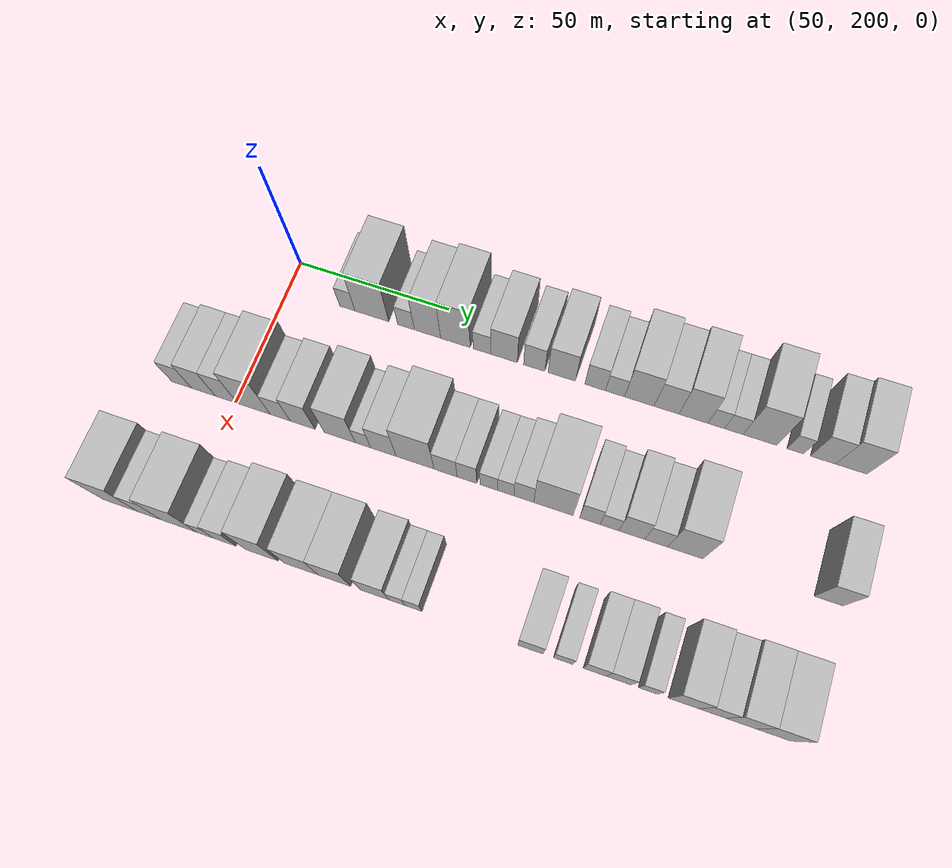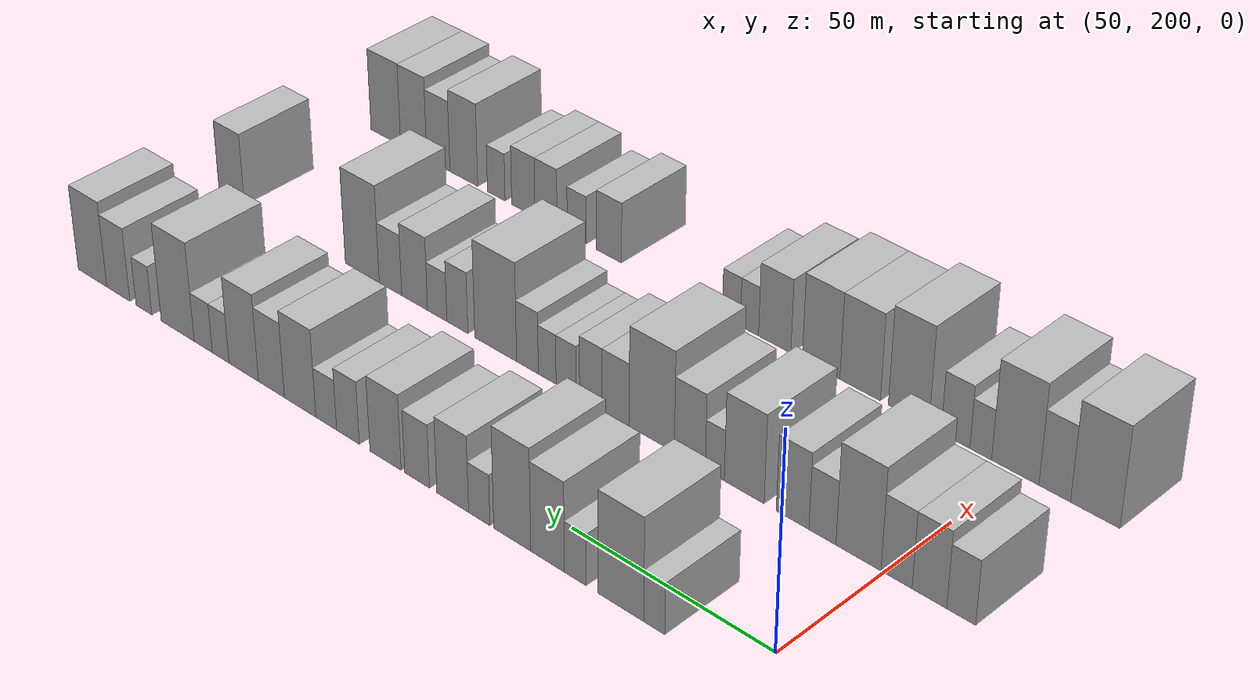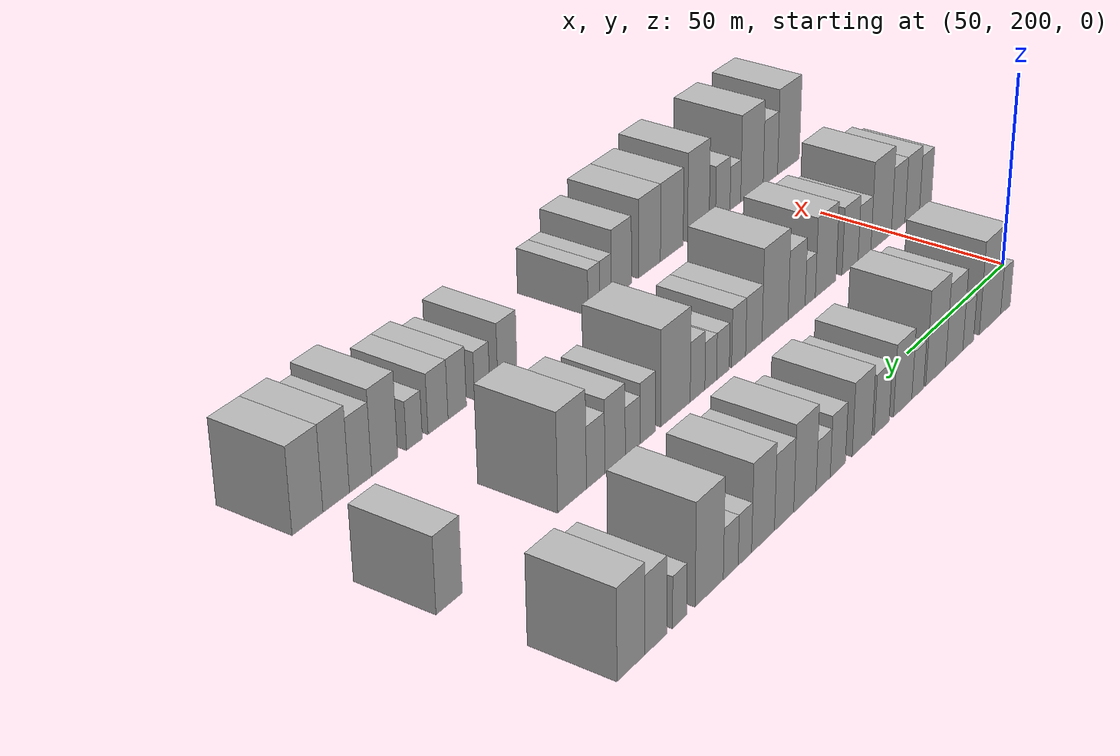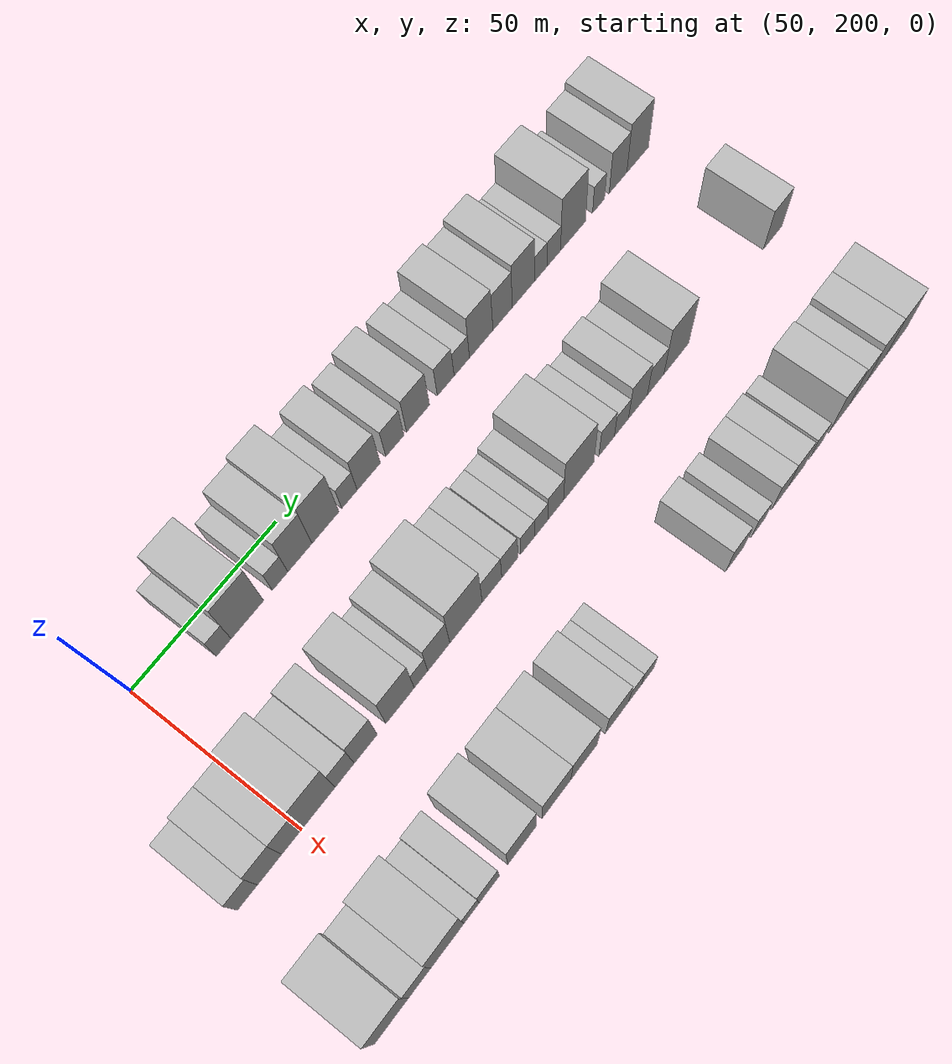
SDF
<sdf version="1.6">
 <world name="default">
  <model name="building_61">
   <static>1</static>
   <pose>50.0000 220.0739 0 0.000000 0.000000 0.000000</pose>
   <link name="link">
    <pose>0 0 6.00 0 0 0</pose>
    <collision name="collision"><geometry><box><size>20.0000 5.1147 12.0000</size></box></geometry></collision>
    <visual name="visual">
     <cast_shadows>0</cast_shadows>
     <geometry><box><size>20.0000 5.1147 12.0000</size></box></geometry>
     <material>
      <script>
       <uri>model://HANNAS_wall/materials/scripts</uri>
       <uri>model://HANNAS_wall/materials/textures</uri>
       <name>vrc/HANNAS_wall</name>
      </script>
     </material>
    </visual>
   </link>
  </model>
  <model name="building_62">
   <static>1</static>
   <pose>50.0000 228.2328 0 0.000000 0.000000 0.000000</pose>
   <link name="link">
    <pose>0 0 12.00 0 0 0</pose>
    <collision name="collision"><geometry><box><size>20.0000 11.2030 24.0000</size></box></geometry></collision>
    <visual name="visual">
     <cast_shadows>0</cast_shadows>
     <geometry><box><size>20.0000 11.2030 24.0000</size></box></geometry>
     <material>
      <script>
       <uri>model://HANNAS_wall/materials/scripts</uri>
       <uri>model://HANNAS_wall/materials/textures</uri>
       <name>vrc/HANNAS_wall</name>
      </script>
     </material>
    </visual>
   </link>
  </model>
  <model name="building_63">
   <static>1</static>
   <pose>50.0000 239.5823 0 0.000000 0.000000 0.000000</pose>
   <link name="link">
    <pose>0 0 6.00 0 0 0</pose>
    <collision name="collision"><geometry><box><size>20.0000 5.4959 12.0000</size></box></geometry></collision>
    <visual name="visual">
     <cast_shadows>0</cast_shadows>
     <geometry><box><size>20.0000 5.4959 12.0000</size></box></geometry>
     <material>
      <script>
       <uri>model://HANNAS_wall/materials/scripts</uri>
       <uri>model://HANNAS_wall/materials/textures</uri>
       <name>vrc/HANNAS_wall</name>
      </script>
     </material>
    </visual>
   </link>
  </model>
  <model name="building_64">
   <static>1</static>
   <pose>50.0000 246.6383 0 0.000000 0.000000 0.000000</pose>
   <link name="link">
    <pose>0 0 10.50 0 0 0</pose>
    <collision name="collision"><geometry><box><size>20.0000 8.6162 21.0000</size></box></geometry></collision>
    <visual name="visual">
     <cast_shadows>0</cast_shadows>
     <geometry><box><size>20.0000 8.6162 21.0000</size></box></geometry>
     <material>
      <script>
       <uri>model://HANNAS_wall/materials/scripts</uri>
       <uri>model://HANNAS_wall/materials/textures</uri>
       <name>vrc/HANNAS_wall</name>
      </script>
     </material>
    </visual>
   </link>
  </model>
  <model name="building_65">
   <static>1</static>
   <pose>50.0000 255.7881 0 0.000000 0.000000 0.000000</pose>
   <link name="link">
    <pose>0 0 12.00 0 0 0</pose>
    <collision name="collision"><geometry><box><size>20.0000 9.6833 24.0000</size></box></geometry></collision>
    <visual name="visual">
     <cast_shadows>0</cast_shadows>
     <geometry><box><size>20.0000 9.6833 24.0000</size></box></geometry>
     <material>
      <script>
       <uri>model://HANNAS_wall/materials/scripts</uri>
       <uri>model://HANNAS_wall/materials/textures</uri>
       <name>vrc/HANNAS_wall</name>
      </script>
     </material>
    </visual>
   </link>
  </model>
  <model name="building_66">
   <static>1</static>
   <pose>50.0000 264.4620 0 0.000000 0.000000 0.000000</pose>
   <link name="link">
    <pose>0 0 6.00 0 0 0</pose>
    <collision name="collision"><geometry><box><size>20.0000 5.6646 12.0000</size></box></geometry></collision>
    <visual name="visual">
     <cast_shadows>0</cast_shadows>
     <geometry><box><size>20.0000 5.6646 12.0000</size></box></geometry>
     <material>
      <script>
       <uri>model://HANNAS_wall/materials/scripts</uri>
       <uri>model://HANNAS_wall/materials/textures</uri>
       <name>vrc/HANNAS_wall</name>
      </script>
     </material>
    </visual>
   </link>
  </model>
  <model name="building_67">
   <static>1</static>
   <pose>50.0000 271.5773 0 0.000000 0.000000 0.000000</pose>
   <link name="link">
    <pose>0 0 9.00 0 0 0</pose>
    <collision name="collision"><geometry><box><size>20.0000 8.5660 18.0000</size></box></geometry></collision>
    <visual name="visual">
     <cast_shadows>0</cast_shadows>
     <geometry><box><size>20.0000 8.5660 18.0000</size></box></geometry>
     <material>
      <script>
       <uri>model://HANNAS_wall/materials/scripts</uri>
       <uri>model://HANNAS_wall/materials/textures</uri>
       <name>vrc/HANNAS_wall</name>
      </script>
     </material>
    </visual>
   </link>
  </model>
  <model name="building_68">
   <static>1</static>
   <pose>50.0000 281.2679 0 0.000000 0.000000 0.000000</pose>
   <link name="link">
    <pose>0 0 7.50 0 0 0</pose>
    <collision name="collision"><geometry><box><size>20.0000 6.8151 15.0000</size></box></geometry></collision>
    <visual name="visual">
     <cast_shadows>0</cast_shadows>
     <geometry><box><size>20.0000 6.8151 15.0000</size></box></geometry>
     <material>
      <script>
       <uri>model://HANNAS_wall/materials/scripts</uri>
       <uri>model://HANNAS_wall/materials/textures</uri>
       <name>vrc/HANNAS_wall</name>
      </script>
     </material>
    </visual>
   </link>
  </model>
  <model name="building_69">
   <static>1</static>
   <pose>50.0000 290.0460 0 0.000000 0.000000 0.000000</pose>
   <link name="link">
    <pose>0 0 9.00 0 0 0</pose>
    <collision name="collision"><geometry><box><size>20.0000 8.7411 18.0000</size></box></geometry></collision>
    <visual name="visual">
     <cast_shadows>0</cast_shadows>
     <geometry><box><size>20.0000 8.7411 18.0000</size></box></geometry>
     <material>
      <script>
       <uri>model://HANNAS_wall/materials/scripts</uri>
       <uri>model://HANNAS_wall/materials/textures</uri>
       <name>vrc/HANNAS_wall</name>
      </script>
     </material>
    </visual>
   </link>
  </model>
  <model name="building_70">
   <static>1</static>
   <pose>50.0000 300.6713 0 0.000000 0.000000 0.000000</pose>
   <link name="link">
    <pose>0 0 7.50 0 0 0</pose>
    <collision name="collision"><geometry><box><size>20.0000 6.5094 15.0000</size></box></geometry></collision>
    <visual name="visual">
     <cast_shadows>0</cast_shadows>
     <geometry><box><size>20.0000 6.5094 15.0000</size></box></geometry>
     <material>
      <script>
       <uri>model://HANNAS_wall/materials/scripts</uri>
       <uri>model://HANNAS_wall/materials/textures</uri>
       <name>vrc/HANNAS_wall</name>
      </script>
     </material>
    </visual>
   </link>
  </model>
  <model name="building_71">
   <static>1</static>
   <pose>50.0000 306.9253 0 0.000000 0.000000 0.000000</pose>
   <link name="link">
    <pose>0 0 6.00 0 0 0</pose>
    <collision name="collision"><geometry><box><size>20.0000 5.9985 12.0000</size></box></geometry></collision>
    <visual name="visual">
     <cast_shadows>0</cast_shadows>
     <geometry><box><size>20.0000 5.9985 12.0000</size></box></geometry>
     <material>
      <script>
       <uri>model://HANNAS_wall/materials/scripts</uri>
       <uri>model://HANNAS_wall/materials/textures</uri>
       <name>vrc/HANNAS_wall</name>
      </script>
     </material>
    </visual>
   </link>
  </model>
  <model name="building_72">
   <static>1</static>
   <pose>50.0000 314.5481 0 0.000000 0.000000 0.000000</pose>
   <link name="link">
    <pose>0 0 10.50 0 0 0</pose>
    <collision name="collision"><geometry><box><size>20.0000 9.2471 21.0000</size></box></geometry></collision>
    <visual name="visual">
     <cast_shadows>0</cast_shadows>
     <geometry><box><size>20.0000 9.2471 21.0000</size></box></geometry>
     <material>
      <script>
       <uri>model://HANNAS_wall/materials/scripts</uri>
       <uri>model://HANNAS_wall/materials/textures</uri>
       <name>vrc/HANNAS_wall</name>
      </script>
     </material>
    </visual>
   </link>
  </model>
  <model name="building_73">
   <static>1</static>
   <pose>50.0000 323.0401 0 0.000000 0.000000 0.000000</pose>
   <link name="link">
    <pose>0 0 9.00 0 0 0</pose>
    <collision name="collision"><geometry><box><size>20.0000 7.7370 18.0000</size></box></geometry></collision>
    <visual name="visual">
     <cast_shadows>0</cast_shadows>
     <geometry><box><size>20.0000 7.7370 18.0000</size></box></geometry>
     <material>
      <script>
       <uri>model://HANNAS_wall/materials/scripts</uri>
       <uri>model://HANNAS_wall/materials/textures</uri>
       <name>vrc/HANNAS_wall</name>
      </script>
     </material>
    </visual>
   </link>
  </model>
  <model name="building_74">
   <static>1</static>
   <pose>50.0000 331.3880 0 0.000000 0.000000 0.000000</pose>
   <link name="link">
    <pose>0 0 10.50 0 0 0</pose>
    <collision name="collision"><geometry><box><size>20.0000 8.9587 21.0000</size></box></geometry></collision>
    <visual name="visual">
     <cast_shadows>0</cast_shadows>
     <geometry><box><size>20.0000 8.9587 21.0000</size></box></geometry>
     <material>
      <script>
       <uri>model://HANNAS_wall/materials/scripts</uri>
       <uri>model://HANNAS_wall/materials/textures</uri>
       <name>vrc/HANNAS_wall</name>
      </script>
     </material>
    </visual>
   </link>
  </model>
  <model name="building_75">
   <static>1</static>
   <pose>50.0000 338.4319 0 0.000000 0.000000 0.000000</pose>
   <link name="link">
    <pose>0 0 6.00 0 0 0</pose>
    <collision name="collision"><geometry><box><size>20.0000 5.1292 12.0000</size></box></geometry></collision>
    <visual name="visual">
     <cast_shadows>0</cast_shadows>
     <geometry><box><size>20.0000 5.1292 12.0000</size></box></geometry>
     <material>
      <script>
       <uri>model://HANNAS_wall/materials/scripts</uri>
       <uri>model://HANNAS_wall/materials/textures</uri>
       <name>vrc/HANNAS_wall</name>
      </script>
     </material>
    </visual>
   </link>
  </model>
  <model name="building_76">
   <static>1</static>
   <pose>50.0000 343.8183 0 0.000000 0.000000 0.000000</pose>
   <link name="link">
    <pose>0 0 6.00 0 0 0</pose>
    <collision name="collision"><geometry><box><size>20.0000 5.6436 12.0000</size></box></geometry></collision>
    <visual name="visual">
     <cast_shadows>0</cast_shadows>
     <geometry><box><size>20.0000 5.6436 12.0000</size></box></geometry>
     <material>
      <script>
       <uri>model://HANNAS_wall/materials/scripts</uri>
       <uri>model://HANNAS_wall/materials/textures</uri>
       <name>vrc/HANNAS_wall</name>
      </script>
     </material>
    </visual>
   </link>
  </model>
  <model name="building_77">
   <static>1</static>
   <pose>50.0000 351.8368 0 0.000000 0.000000 0.000000</pose>
   <link name="link">
    <pose>0 0 12.00 0 0 0</pose>
    <collision name="collision"><geometry><box><size>20.0000 10.3933 24.0000</size></box></geometry></collision>
    <visual name="visual">
     <cast_shadows>0</cast_shadows>
     <geometry><box><size>20.0000 10.3933 24.0000</size></box></geometry>
     <material>
      <script>
       <uri>model://HANNAS_wall/materials/scripts</uri>
       <uri>model://HANNAS_wall/materials/textures</uri>
       <name>vrc/HANNAS_wall</name>
      </script>
     </material>
    </visual>
   </link>
  </model>
  <model name="building_78">
   <static>1</static>
   <pose>50.0000 362.5720 0 0.000000 0.000000 0.000000</pose>
   <link name="link">
    <pose>0 0 6.00 0 0 0</pose>
    <collision name="collision"><geometry><box><size>20.0000 5.0772 12.0000</size></box></geometry></collision>
    <visual name="visual">
     <cast_shadows>0</cast_shadows>
     <geometry><box><size>20.0000 5.0772 12.0000</size></box></geometry>
     <material>
      <script>
       <uri>model://HANNAS_wall/materials/scripts</uri>
       <uri>model://HANNAS_wall/materials/textures</uri>
       <name>vrc/HANNAS_wall</name>
      </script>
     </material>
    </visual>
   </link>
  </model>
  <model name="building_79">
   <static>1</static>
   <pose>50.0000 370.8876 0 0.000000 0.000000 0.000000</pose>
   <link name="link">
    <pose>0 0 9.00 0 0 0</pose>
    <collision name="collision"><geometry><box><size>20.0000 7.5540 18.0000</size></box></geometry></collision>
    <visual name="visual">
     <cast_shadows>0</cast_shadows>
     <geometry><box><size>20.0000 7.5540 18.0000</size></box></geometry>
     <material>
      <script>
       <uri>model://HANNAS_wall/materials/scripts</uri>
       <uri>model://HANNAS_wall/materials/textures</uri>
       <name>vrc/HANNAS_wall</name>
      </script>
     </material>
    </visual>
   </link>
  </model>
  <model name="building_80">
   <static>1</static>
   <pose>50.0000 379.3829 0 0.000000 0.000000 0.000000</pose>
   <link name="link">
    <pose>0 0 10.50 0 0 0</pose>
    <collision name="collision"><geometry><box><size>20.0000 9.4367 21.0000</size></box></geometry></collision>
    <visual name="visual">
     <cast_shadows>0</cast_shadows>
     <geometry><box><size>20.0000 9.4367 21.0000</size></box></geometry>
     <material>
      <script>
       <uri>model://HANNAS_wall/materials/scripts</uri>
       <uri>model://HANNAS_wall/materials/textures</uri>
       <name>vrc/HANNAS_wall</name>
      </script>
     </material>
    </visual>
   </link>
  </model>
  <model name="building_145">
   <static>1</static>
   <pose>90.0000 182.2165 0 0.000000 0.000000 0.000000</pose>
   <link name="link">
    <pose>0 0 7.50 0 0 0</pose>
    <collision name="collision"><geometry><box><size>20.0000 6.5485 15.0000</size></box></geometry></collision>
    <visual name="visual">
     <cast_shadows>0</cast_shadows>
     <geometry><box><size>20.0000 6.5485 15.0000</size></box></geometry>
     <material>
      <script>
       <uri>model://HANNAS_wall/materials/scripts</uri>
       <uri>model://HANNAS_wall/materials/textures</uri>
       <name>vrc/HANNAS_wall</name>
      </script>
     </material>
    </visual>
   </link>
  </model>
  <model name="building_146">
   <static>1</static>
   <pose>90.0000 189.4451 0 0.000000 0.000000 0.000000</pose>
   <link name="link">
    <pose>0 0 9.00 0 0 0</pose>
    <collision name="collision"><geometry><box><size>20.0000 7.9087 18.0000</size></box></geometry></collision>
    <visual name="visual">
     <cast_shadows>0</cast_shadows>
     <geometry><box><size>20.0000 7.9087 18.0000</size></box></geometry>
     <material>
      <script>
       <uri>model://HANNAS_wall/materials/scripts</uri>
       <uri>model://HANNAS_wall/materials/textures</uri>
       <name>vrc/HANNAS_wall</name>
      </script>
     </material>
    </visual>
   </link>
  </model>
  <model name="building_147">
   <static>1</static>
   <pose>90.0000 197.0199 0 0.000000 0.000000 0.000000</pose>
   <link name="link">
    <pose>0 0 9.00 0 0 0</pose>
    <collision name="collision"><geometry><box><size>20.0000 7.2409 18.0000</size></box></geometry></collision>
    <visual name="visual">
     <cast_shadows>0</cast_shadows>
     <geometry><box><size>20.0000 7.2409 18.0000</size></box></geometry>
     <material>
      <script>
       <uri>model://HANNAS_wall/materials/scripts</uri>
       <uri>model://HANNAS_wall/materials/textures</uri>
       <name>vrc/HANNAS_wall</name>
      </script>
     </material>
    </visual>
   </link>
  </model>
  <model name="building_148">
   <static>1</static>
   <pose>90.0000 205.9878 0 0.000000 0.000000 0.000000</pose>
   <link name="link">
    <pose>0 0 12.00 0 0 0</pose>
    <collision name="collision"><geometry><box><size>20.0000 10.6948 24.0000</size></box></geometry></collision>
    <visual name="visual">
     <cast_shadows>0</cast_shadows>
     <geometry><box><size>20.0000 10.6948 24.0000</size></box></geometry>
     <material>
      <script>
       <uri>model://HANNAS_wall/materials/scripts</uri>
       <uri>model://HANNAS_wall/materials/textures</uri>
       <name>vrc/HANNAS_wall</name>
      </script>
     </material>
    </visual>
   </link>
  </model>
  <model name="building_149">
   <static>1</static>
   <pose>90.0000 214.5920 0 0.000000 0.000000 0.000000</pose>
   <link name="link">
    <pose>0 0 7.50 0 0 0</pose>
    <collision name="collision"><geometry><box><size>20.0000 6.5136 15.0000</size></box></geometry></collision>
    <visual name="visual">
     <cast_shadows>0</cast_shadows>
     <geometry><box><size>20.0000 6.5136 15.0000</size></box></geometry>
     <material>
      <script>
       <uri>model://HANNAS_wall/materials/scripts</uri>
       <uri>model://HANNAS_wall/materials/textures</uri>
       <name>vrc/HANNAS_wall</name>
      </script>
     </material>
    </visual>
   </link>
  </model>
  <model name="building_150">
   <static>1</static>
   <pose>90.0000 221.8394 0 0.000000 0.000000 0.000000</pose>
   <link name="link">
    <pose>0 0 9.00 0 0 0</pose>
    <collision name="collision"><geometry><box><size>20.0000 7.9811 18.0000</size></box></geometry></collision>
    <visual name="visual">
     <cast_shadows>0</cast_shadows>
     <geometry><box><size>20.0000 7.9811 18.0000</size></box></geometry>
     <material>
      <script>
       <uri>model://HANNAS_wall/materials/scripts</uri>
       <uri>model://HANNAS_wall/materials/textures</uri>
       <name>vrc/HANNAS_wall</name>
      </script>
     </material>
    </visual>
   </link>
  </model>
  <model name="building_151">
   <static>1</static>
   <pose>90.0000 233.8338 0 0.000000 0.000000 0.000000</pose>
   <link name="link">
    <pose>0 0 10.50 0 0 0</pose>
    <collision name="collision"><geometry><box><size>20.0000 10.0076 21.0000</size></box></geometry></collision>
    <visual name="visual">
     <cast_shadows>0</cast_shadows>
     <geometry><box><size>20.0000 10.0076 21.0000</size></box></geometry>
     <material>
      <script>
       <uri>model://HANNAS_wall/materials/scripts</uri>
       <uri>model://HANNAS_wall/materials/textures</uri>
       <name>vrc/HANNAS_wall</name>
      </script>
     </material>
    </visual>
   </link>
  </model>
  <model name="building_152">
   <static>1</static>
   <pose>90.0000 241.2598 0 0.000000 0.000000 0.000000</pose>
   <link name="link">
    <pose>0 0 6.00 0 0 0</pose>
    <collision name="collision"><geometry><box><size>20.0000 4.8445 12.0000</size></box></geometry></collision>
    <visual name="visual">
     <cast_shadows>0</cast_shadows>
     <geometry><box><size>20.0000 4.8445 12.0000</size></box></geometry>
     <material>
      <script>
       <uri>model://HANNAS_wall/materials/scripts</uri>
       <uri>model://HANNAS_wall/materials/textures</uri>
       <name>vrc/HANNAS_wall</name>
      </script>
     </material>
    </visual>
   </link>
  </model>
  <model name="building_153">
   <static>1</static>
   <pose>90.0000 247.6739 0 0.000000 0.000000 0.000000</pose>
   <link name="link">
    <pose>0 0 9.00 0 0 0</pose>
    <collision name="collision"><geometry><box><size>20.0000 7.9838 18.0000</size></box></geometry></collision>
    <visual name="visual">
     <cast_shadows>0</cast_shadows>
     <geometry><box><size>20.0000 7.9838 18.0000</size></box></geometry>
     <material>
      <script>
       <uri>model://HANNAS_wall/materials/scripts</uri>
       <uri>model://HANNAS_wall/materials/textures</uri>
       <name>vrc/HANNAS_wall</name>
      </script>
     </material>
    </visual>
   </link>
  </model>
  <model name="building_154">
   <static>1</static>
   <pose>90.0000 257.6078 0 0.000000 0.000000 0.000000</pose>
   <link name="link">
    <pose>0 0 12.00 0 0 0</pose>
    <collision name="collision"><geometry><box><size>20.0000 11.8838 24.0000</size></box></geometry></collision>
    <visual name="visual">
     <cast_shadows>0</cast_shadows>
     <geometry><box><size>20.0000 11.8838 24.0000</size></box></geometry>
     <material>
      <script>
       <uri>model://HANNAS_wall/materials/scripts</uri>
       <uri>model://HANNAS_wall/materials/textures</uri>
       <name>vrc/HANNAS_wall</name>
      </script>
     </material>
    </visual>
   </link>
  </model>
  <model name="building_155">
   <static>1</static>
   <pose>90.0000 267.1862 0 0.000000 0.000000 0.000000</pose>
   <link name="link">
    <pose>0 0 7.50 0 0 0</pose>
    <collision name="collision"><geometry><box><size>20.0000 7.2730 15.0000</size></box></geometry></collision>
    <visual name="visual">
     <cast_shadows>0</cast_shadows>
     <geometry><box><size>20.0000 7.2730 15.0000</size></box></geometry>
     <material>
      <script>
       <uri>model://HANNAS_wall/materials/scripts</uri>
       <uri>model://HANNAS_wall/materials/textures</uri>
       <name>vrc/HANNAS_wall</name>
      </script>
     </material>
    </visual>
   </link>
  </model>
  <model name="building_156">
   <static>1</static>
   <pose>90.0000 273.8651 0 0.000000 0.000000 0.000000</pose>
   <link name="link">
    <pose>0 0 7.50 0 0 0</pose>
    <collision name="collision"><geometry><box><size>20.0000 6.0848 15.0000</size></box></geometry></collision>
    <visual name="visual">
     <cast_shadows>0</cast_shadows>
     <geometry><box><size>20.0000 6.0848 15.0000</size></box></geometry>
     <material>
      <script>
       <uri>model://HANNAS_wall/materials/scripts</uri>
       <uri>model://HANNAS_wall/materials/textures</uri>
       <name>vrc/HANNAS_wall</name>
      </script>
     </material>
    </visual>
   </link>
  </model>
  <model name="building_157">
   <static>1</static>
   <pose>90.0000 280.6363 0 0.000000 0.000000 0.000000</pose>
   <link name="link">
    <pose>0 0 6.00 0 0 0</pose>
    <collision name="collision"><geometry><box><size>20.0000 5.4576 12.0000</size></box></geometry></collision>
    <visual name="visual">
     <cast_shadows>0</cast_shadows>
     <geometry><box><size>20.0000 5.4576 12.0000</size></box></geometry>
     <material>
      <script>
       <uri>model://HANNAS_wall/materials/scripts</uri>
       <uri>model://HANNAS_wall/materials/textures</uri>
       <name>vrc/HANNAS_wall</name>
      </script>
     </material>
    </visual>
   </link>
  </model>
  <model name="building_158">
   <static>1</static>
   <pose>90.0000 285.8298 0 0.000000 0.000000 0.000000</pose>
   <link name="link">
    <pose>0 0 6.00 0 0 0</pose>
    <collision name="collision"><geometry><box><size>20.0000 4.9293 12.0000</size></box></geometry></collision>
    <visual name="visual">
     <cast_shadows>0</cast_shadows>
     <geometry><box><size>20.0000 4.9293 12.0000</size></box></geometry>
     <material>
      <script>
       <uri>model://HANNAS_wall/materials/scripts</uri>
       <uri>model://HANNAS_wall/materials/textures</uri>
       <name>vrc/HANNAS_wall</name>
      </script>
     </material>
    </visual>
   </link>
  </model>
  <model name="building_159">
   <static>1</static>
   <pose>90.0000 291.3435 0 0.000000 0.000000 0.000000</pose>
   <link name="link">
    <pose>0 0 7.50 0 0 0</pose>
    <collision name="collision"><geometry><box><size>20.0000 6.0981 15.0000</size></box></geometry></collision>
    <visual name="visual">
     <cast_shadows>0</cast_shadows>
     <geometry><box><size>20.0000 6.0981 15.0000</size></box></geometry>
     <material>
      <script>
       <uri>model://HANNAS_wall/materials/scripts</uri>
       <uri>model://HANNAS_wall/materials/textures</uri>
       <name>vrc/HANNAS_wall</name>
      </script>
     </material>
    </visual>
   </link>
  </model>
  <model name="building_160">
   <static>1</static>
   <pose>90.0000 300.3685 0 0.000000 0.000000 0.000000</pose>
   <link name="link">
    <pose>0 0 12.00 0 0 0</pose>
    <collision name="collision"><geometry><box><size>20.0000 11.9520 24.0000</size></box></geometry></collision>
    <visual name="visual">
     <cast_shadows>0</cast_shadows>
     <geometry><box><size>20.0000 11.9520 24.0000</size></box></geometry>
     <material>
      <script>
       <uri>model://HANNAS_wall/materials/scripts</uri>
       <uri>model://HANNAS_wall/materials/textures</uri>
       <name>vrc/HANNAS_wall</name>
      </script>
     </material>
    </visual>
   </link>
  </model>
  <model name="building_161">
   <static>1</static>
   <pose>90.0000 311.4114 0 0.000000 0.000000 0.000000</pose>
   <link name="link">
    <pose>0 0 7.50 0 0 0</pose>
    <collision name="collision"><geometry><box><size>20.0000 6.1339 15.0000</size></box></geometry></collision>
    <visual name="visual">
     <cast_shadows>0</cast_shadows>
     <geometry><box><size>20.0000 6.1339 15.0000</size></box></geometry>
     <material>
      <script>
       <uri>model://HANNAS_wall/materials/scripts</uri>
       <uri>model://HANNAS_wall/materials/textures</uri>
       <name>vrc/HANNAS_wall</name>
      </script>
     </material>
    </visual>
   </link>
  </model>
  <model name="building_162">
   <static>1</static>
   <pose>90.0000 317.3245 0 0.000000 0.000000 0.000000</pose>
   <link name="link">
    <pose>0 0 6.00 0 0 0</pose>
    <collision name="collision"><geometry><box><size>20.0000 5.6923 12.0000</size></box></geometry></collision>
    <visual name="visual">
     <cast_shadows>0</cast_shadows>
     <geometry><box><size>20.0000 5.6923 12.0000</size></box></geometry>
     <material>
      <script>
       <uri>model://HANNAS_wall/materials/scripts</uri>
       <uri>model://HANNAS_wall/materials/textures</uri>
       <name>vrc/HANNAS_wall</name>
      </script>
     </material>
    </visual>
   </link>
  </model>
  <model name="building_163">
   <static>1</static>
   <pose>90.0000 324.0325 0 0.000000 0.000000 0.000000</pose>
   <link name="link">
    <pose>0 0 9.00 0 0 0</pose>
    <collision name="collision"><geometry><box><size>20.0000 7.7236 18.0000</size></box></geometry></collision>
    <visual name="visual">
     <cast_shadows>0</cast_shadows>
     <geometry><box><size>20.0000 7.7236 18.0000</size></box></geometry>
     <material>
      <script>
       <uri>model://HANNAS_wall/materials/scripts</uri>
       <uri>model://HANNAS_wall/materials/textures</uri>
       <name>vrc/HANNAS_wall</name>
      </script>
     </material>
    </visual>
   </link>
  </model>
  <model name="building_164">
   <static>1</static>
   <pose>90.0000 331.3060 0 0.000000 0.000000 0.000000</pose>
   <link name="link">
    <pose>0 0 7.50 0 0 0</pose>
    <collision name="collision"><geometry><box><size>20.0000 6.8235 15.0000</size></box></geometry></collision>
    <visual name="visual">
     <cast_shadows>0</cast_shadows>
     <geometry><box><size>20.0000 6.8235 15.0000</size></box></geometry>
     <material>
      <script>
       <uri>model://HANNAS_wall/materials/scripts</uri>
       <uri>model://HANNAS_wall/materials/textures</uri>
       <name>vrc/HANNAS_wall</name>
      </script>
     </material>
    </visual>
   </link>
  </model>
  <model name="building_165">
   <static>1</static>
   <pose>90.0000 339.9241 0 0.000000 0.000000 0.000000</pose>
   <link name="link">
    <pose>0 0 12.00 0 0 0</pose>
    <collision name="collision"><geometry><box><size>20.0000 10.4126 24.0000</size></box></geometry></collision>
    <visual name="visual">
     <cast_shadows>0</cast_shadows>
     <geometry><box><size>20.0000 10.4126 24.0000</size></box></geometry>
     <material>
      <script>
       <uri>model://HANNAS_wall/materials/scripts</uri>
       <uri>model://HANNAS_wall/materials/textures</uri>
       <name>vrc/HANNAS_wall</name>
      </script>
     </material>
    </visual>
   </link>
  </model>
  <model name="building_166">
   <static>1</static>
   <pose>90.0000 381.6258 0 0.000000 0.000000 0.000000</pose>
   <link name="link">
    <pose>0 0 9.00 0 0 0</pose>
    <collision name="collision"><geometry><box><size>20.0000 8.3303 18.0000</size></box></geometry></collision>
    <visual name="visual">
     <cast_shadows>0</cast_shadows>
     <geometry><box><size>20.0000 8.3303 18.0000</size></box></geometry>
     <material>
      <script>
       <uri>model://HANNAS_wall/materials/scripts</uri>
       <uri>model://HANNAS_wall/materials/textures</uri>
       <name>vrc/HANNAS_wall</name>
      </script>
     </material>
    </visual>
   </link>
  </model>
  <model name="building_229">
   <static>1</static>
   <pose>130.0000 181.6711 0 0.000000 0.000000 0.000000</pose>
   <link name="link">
    <pose>0 0 12.00 0 0 0</pose>
    <collision name="collision"><geometry><box><size>20.0000 11.3096 24.0000</size></box></geometry></collision>
    <visual name="visual">
     <cast_shadows>0</cast_shadows>
     <geometry><box><size>20.0000 11.3096 24.0000</size></box></geometry>
     <material>
      <script>
       <uri>model://HANNAS_wall/materials/scripts</uri>
       <uri>model://HANNAS_wall/materials/textures</uri>
       <name>vrc/HANNAS_wall</name>
      </script>
     </material>
    </visual>
   </link>
  </model>
  <model name="building_230">
   <static>1</static>
   <pose>130.0000 190.9939 0 0.000000 0.000000 0.000000</pose>
   <link name="link">
    <pose>0 0 9.00 0 0 0</pose>
    <collision name="collision"><geometry><box><size>20.0000 7.3360 18.0000</size></box></geometry></collision>
    <visual name="visual">
     <cast_shadows>0</cast_shadows>
     <geometry><box><size>20.0000 7.3360 18.0000</size></box></geometry>
     <material>
      <script>
       <uri>model://HANNAS_wall/materials/scripts</uri>
       <uri>model://HANNAS_wall/materials/textures</uri>
       <name>vrc/HANNAS_wall</name>
      </script>
     </material>
    </visual>
   </link>
  </model>
  <model name="building_231">
   <static>1</static>
   <pose>130.0000 200.2639 0 0.000000 0.000000 0.000000</pose>
   <link name="link">
    <pose>0 0 12.00 0 0 0</pose>
    <collision name="collision"><geometry><box><size>20.0000 11.2039 24.0000</size></box></geometry></collision>
    <visual name="visual">
     <cast_shadows>0</cast_shadows>
     <geometry><box><size>20.0000 11.2039 24.0000</size></box></geometry>
     <material>
      <script>
       <uri>model://HANNAS_wall/materials/scripts</uri>
       <uri>model://HANNAS_wall/materials/textures</uri>
       <name>vrc/HANNAS_wall</name>
      </script>
     </material>
    </visual>
   </link>
  </model>
  <model name="building_232">
   <static>1</static>
   <pose>130.0000 208.4861 0 0.000000 0.000000 0.000000</pose>
   <link name="link">
    <pose>0 0 6.00 0 0 0</pose>
    <collision name="collision"><geometry><box><size>20.0000 5.2405 12.0000</size></box></geometry></collision>
    <visual name="visual">
     <cast_shadows>0</cast_shadows>
     <geometry><box><size>20.0000 5.2405 12.0000</size></box></geometry>
     <material>
      <script>
       <uri>model://HANNAS_wall/materials/scripts</uri>
       <uri>model://HANNAS_wall/materials/textures</uri>
       <name>vrc/HANNAS_wall</name>
      </script>
     </material>
    </visual>
   </link>
  </model>
  <model name="building_233">
   <static>1</static>
   <pose>130.0000 214.6007 0 0.000000 0.000000 0.000000</pose>
   <link name="link">
    <pose>0 0 7.50 0 0 0</pose>
    <collision name="collision"><geometry><box><size>20.0000 6.9887 15.0000</size></box></geometry></collision>
    <visual name="visual">
     <cast_shadows>0</cast_shadows>
     <geometry><box><size>20.0000 6.9887 15.0000</size></box></geometry>
     <material>
      <script>
       <uri>model://HANNAS_wall/materials/scripts</uri>
       <uri>model://HANNAS_wall/materials/textures</uri>
       <name>vrc/HANNAS_wall</name>
      </script>
     </material>
    </visual>
   </link>
  </model>
  <model name="building_234">
   <static>1</static>
   <pose>130.0000 226.1555 0 0.000000 0.000000 0.000000</pose>
   <link name="link">
    <pose>0 0 12.00 0 0 0</pose>
    <collision name="collision"><geometry><box><size>20.0000 10.1210 24.0000</size></box></geometry></collision>
    <visual name="visual">
     <cast_shadows>0</cast_shadows>
     <geometry><box><size>20.0000 10.1210 24.0000</size></box></geometry>
     <material>
      <script>
       <uri>model://HANNAS_wall/materials/scripts</uri>
       <uri>model://HANNAS_wall/materials/textures</uri>
       <name>vrc/HANNAS_wall</name>
      </script>
     </material>
    </visual>
   </link>
  </model>
  <model name="building_235">
   <static>1</static>
   <pose>130.0000 238.3930 0 0.000000 0.000000 0.000000</pose>
   <link name="link">
    <pose>0 0 10.50 0 0 0</pose>
    <collision name="collision"><geometry><box><size>20.0000 10.3540 21.0000</size></box></geometry></collision>
    <visual name="visual">
     <cast_shadows>0</cast_shadows>
     <geometry><box><size>20.0000 10.3540 21.0000</size></box></geometry>
     <material>
      <script>
       <uri>model://HANNAS_wall/materials/scripts</uri>
       <uri>model://HANNAS_wall/materials/textures</uri>
       <name>vrc/HANNAS_wall</name>
      </script>
     </material>
    </visual>
   </link>
  </model>
  <model name="building_236">
   <static>1</static>
   <pose>130.0000 248.4617 0 0.000000 0.000000 0.000000</pose>
   <link name="link">
    <pose>0 0 10.50 0 0 0</pose>
    <collision name="collision"><geometry><box><size>20.0000 9.7834 21.0000</size></box></geometry></collision>
    <visual name="visual">
     <cast_shadows>0</cast_shadows>
     <geometry><box><size>20.0000 9.7834 21.0000</size></box></geometry>
     <material>
      <script>
       <uri>model://HANNAS_wall/materials/scripts</uri>
       <uri>model://HANNAS_wall/materials/textures</uri>
       <name>vrc/HANNAS_wall</name>
      </script>
     </material>
    </visual>
   </link>
  </model>
  <model name="building_237">
   <static>1</static>
   <pose>130.0000 260.6606 0 0.000000 0.000000 0.000000</pose>
   <link name="link">
    <pose>0 0 9.00 0 0 0</pose>
    <collision name="collision"><geometry><box><size>20.0000 8.6145 18.0000</size></box></geometry></collision>
    <visual name="visual">
     <cast_shadows>0</cast_shadows>
     <geometry><box><size>20.0000 8.6145 18.0000</size></box></geometry>
     <material>
      <script>
       <uri>model://HANNAS_wall/materials/scripts</uri>
       <uri>model://HANNAS_wall/materials/textures</uri>
       <name>vrc/HANNAS_wall</name>
      </script>
     </material>
    </visual>
   </link>
  </model>
  <model name="building_238">
   <static>1</static>
   <pose>130.0000 267.4158 0 0.000000 0.000000 0.000000</pose>
   <link name="link">
    <pose>0 0 6.00 0 0 0</pose>
    <collision name="collision"><geometry><box><size>20.0000 4.8959 12.0000</size></box></geometry></collision>
    <visual name="visual">
     <cast_shadows>0</cast_shadows>
     <geometry><box><size>20.0000 4.8959 12.0000</size></box></geometry>
     <material>
      <script>
       <uri>model://HANNAS_wall/materials/scripts</uri>
       <uri>model://HANNAS_wall/materials/textures</uri>
       <name>vrc/HANNAS_wall</name>
      </script>
     </material>
    </visual>
   </link>
  </model>
  <model name="building_239">
   <static>1</static>
   <pose>130.0000 272.3154 0 0.000000 0.000000 0.000000</pose>
   <link name="link">
    <pose>0 0 6.00 0 0 0</pose>
    <collision name="collision"><geometry><box><size>20.0000 4.9032 12.0000</size></box></geometry></collision>
    <visual name="visual">
     <cast_shadows>0</cast_shadows>
     <geometry><box><size>20.0000 4.9032 12.0000</size></box></geometry>
     <material>
      <script>
       <uri>model://HANNAS_wall/materials/scripts</uri>
       <uri>model://HANNAS_wall/materials/textures</uri>
       <name>vrc/HANNAS_wall</name>
      </script>
     </material>
    </visual>
   </link>
  </model>
  <model name="building_240">
   <static>1</static>
   <pose>130.0000 306.7185 0 0.000000 0.000000 0.000000</pose>
   <link name="link">
    <pose>0 0 7.50 0 0 0</pose>
    <collision name="collision"><geometry><box><size>20.0000 7.3010 15.0000</size></box></geometry></collision>
    <visual name="visual">
     <cast_shadows>0</cast_shadows>
     <geometry><box><size>20.0000 7.3010 15.0000</size></box></geometry>
     <material>
      <script>
       <uri>model://HANNAS_wall/materials/scripts</uri>
       <uri>model://HANNAS_wall/materials/textures</uri>
       <name>vrc/HANNAS_wall</name>
      </script>
     </material>
    </visual>
   </link>
  </model>
  <model name="building_241">
   <static>1</static>
   <pose>130.0000 316.1625 0 0.000000 0.000000 0.000000</pose>
   <link name="link">
    <pose>0 0 6.00 0 0 0</pose>
    <collision name="collision"><geometry><box><size>20.0000 5.5870 12.0000</size></box></geometry></collision>
    <visual name="visual">
     <cast_shadows>0</cast_shadows>
     <geometry><box><size>20.0000 5.5870 12.0000</size></box></geometry>
     <material>
      <script>
       <uri>model://HANNAS_wall/materials/scripts</uri>
       <uri>model://HANNAS_wall/materials/textures</uri>
       <name>vrc/HANNAS_wall</name>
      </script>
     </material>
    </visual>
   </link>
  </model>
  <model name="building_242">
   <static>1</static>
   <pose>130.0000 325.2773 0 0.000000 0.000000 0.000000</pose>
   <link name="link">
    <pose>0 0 7.50 0 0 0</pose>
    <collision name="collision"><geometry><box><size>20.0000 6.6424 15.0000</size></box></geometry></collision>
    <visual name="visual">
     <cast_shadows>0</cast_shadows>
     <geometry><box><size>20.0000 6.6424 15.0000</size></box></geometry>
     <material>
      <script>
       <uri>model://HANNAS_wall/materials/scripts</uri>
       <uri>model://HANNAS_wall/materials/textures</uri>
       <name>vrc/HANNAS_wall</name>
      </script>
     </material>
    </visual>
   </link>
  </model>
  <model name="building_243">
   <static>1</static>
   <pose>130.0000 332.1371 0 0.000000 0.000000 0.000000</pose>
   <link name="link">
    <pose>0 0 7.50 0 0 0</pose>
    <collision name="collision"><geometry><box><size>20.0000 7.0773 15.0000</size></box></geometry></collision>
    <visual name="visual">
     <cast_shadows>0</cast_shadows>
     <geometry><box><size>20.0000 7.0773 15.0000</size></box></geometry>
     <material>
      <script>
       <uri>model://HANNAS_wall/materials/scripts</uri>
       <uri>model://HANNAS_wall/materials/textures</uri>
       <name>vrc/HANNAS_wall</name>
      </script>
     </material>
    </visual>
   </link>
  </model>
  <model name="building_244">
   <static>1</static>
   <pose>130.0000 340.4027 0 0.000000 0.000000 0.000000</pose>
   <link name="link">
    <pose>0 0 6.00 0 0 0</pose>
    <collision name="collision"><geometry><box><size>20.0000 5.4538 12.0000</size></box></geometry></collision>
    <visual name="visual">
     <cast_shadows>0</cast_shadows>
     <geometry><box><size>20.0000 5.4538 12.0000</size></box></geometry>
     <material>
      <script>
       <uri>model://HANNAS_wall/materials/scripts</uri>
       <uri>model://HANNAS_wall/materials/textures</uri>
       <name>vrc/HANNAS_wall</name>
      </script>
     </material>
    </visual>
   </link>
  </model>
  <model name="building_245">
   <static>1</static>
   <pose>130.0000 350.4891 0 0.000000 0.000000 0.000000</pose>
   <link name="link">
    <pose>0 0 10.50 0 0 0</pose>
    <collision name="collision"><geometry><box><size>20.0000 8.7189 21.0000</size></box></geometry></collision>
    <visual name="visual">
     <cast_shadows>0</cast_shadows>
     <geometry><box><size>20.0000 8.7189 21.0000</size></box></geometry>
     <material>
      <script>
       <uri>model://HANNAS_wall/materials/scripts</uri>
       <uri>model://HANNAS_wall/materials/textures</uri>
       <name>vrc/HANNAS_wall</name>
      </script>
     </material>
    </visual>
   </link>
  </model>
  <model name="building_246">
   <static>1</static>
   <pose>130.0000 358.5221 0 0.000000 0.000000 0.000000</pose>
   <link name="link">
    <pose>0 0 9.00 0 0 0</pose>
    <collision name="collision"><geometry><box><size>20.0000 7.3472 18.0000</size></box></geometry></collision>
    <visual name="visual">
     <cast_shadows>0</cast_shadows>
     <geometry><box><size>20.0000 7.3472 18.0000</size></box></geometry>
     <material>
      <script>
       <uri>model://HANNAS_wall/materials/scripts</uri>
       <uri>model://HANNAS_wall/materials/textures</uri>
       <name>vrc/HANNAS_wall</name>
      </script>
     </material>
    </visual>
   </link>
  </model>
  <model name="building_247">
   <static>1</static>
   <pose>130.0000 366.4322 0 0.000000 0.000000 0.000000</pose>
   <link name="link">
    <pose>0 0 10.50 0 0 0</pose>
    <collision name="collision"><geometry><box><size>20.0000 8.4731 21.0000</size></box></geometry></collision>
    <visual name="visual">
     <cast_shadows>0</cast_shadows>
     <geometry><box><size>20.0000 8.4731 21.0000</size></box></geometry>
     <material>
      <script>
       <uri>model://HANNAS_wall/materials/scripts</uri>
       <uri>model://HANNAS_wall/materials/textures</uri>
       <name>vrc/HANNAS_wall</name>
      </script>
     </material>
    </visual>
   </link>
  </model>
  <model name="building_248">
   <static>1</static>
   <pose>130.0000 375.4977 0 0.000000 0.000000 0.000000</pose>
   <link name="link">
    <pose>0 0 10.50 0 0 0</pose>
    <collision name="collision"><geometry><box><size>20.0000 9.6579 21.0000</size></box></geometry></collision>
    <visual name="visual">
     <cast_shadows>0</cast_shadows>
     <geometry><box><size>20.0000 9.6579 21.0000</size></box></geometry>
     <material>
      <script>
       <uri>model://HANNAS_wall/materials/scripts</uri>
       <uri>model://HANNAS_wall/materials/textures</uri>
       <name>vrc/HANNAS_wall</name>
      </script>
     </material>
    </visual>
   </link>
  </model>
 </world>
</sdf>
